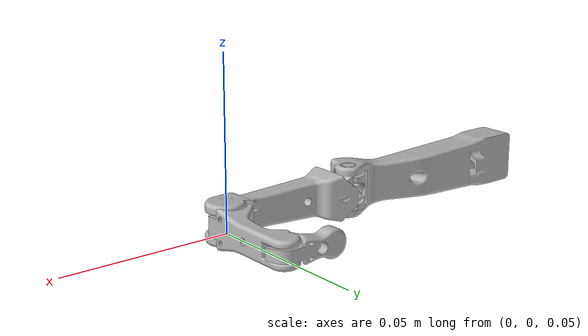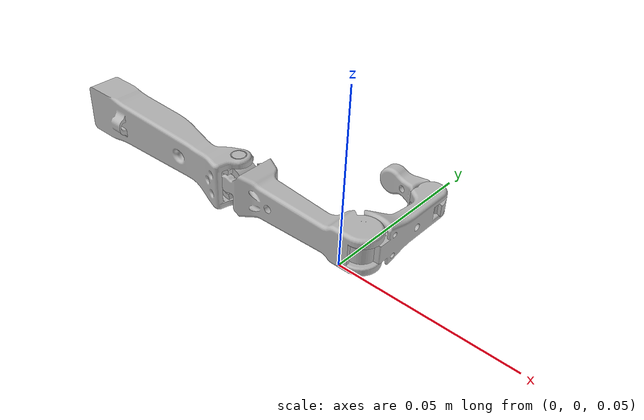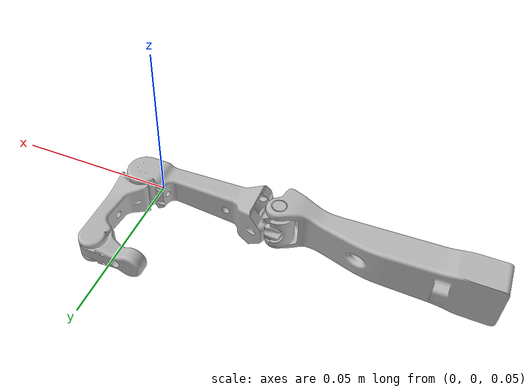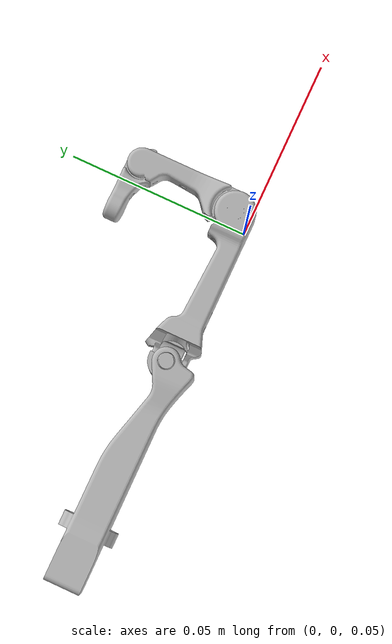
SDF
<?xml version="1.0" ?>
<sdf version="1.6">
	<model name="FingerTest">
		<link name="limb0">
			<pose frame="">-0.007152270675496726 0.010040149934974279 0.02348840378477054 0.0 -0.0 0.0</pose>
			<inertial>
				<pose frame="">0.0 0.0 0.0 0 0 0</pose>
				<mass>0.11612310621212019</mass>
				<inertia>
					<ixx>0.00036167423577589927</ixx>
					<ixy>3.316022305022051e-05</ixy>
					<ixz>-2.282604088458617e-05</ixz>
					<iyy>0.0010667399339109778</iyy>
					<iyz>0.0004897974339456185</iyz>
					<izz>0.0007100993674793531</izz>
				</inertia>
			</inertial>
			<collision name="limb0_collision">
				<geometry>
					<mesh>
						<uri>model://FingerTest/meshes/CAD/limb0.stl</uri>
						<scale>0.001 0.001 0.001</scale>
					</mesh>
				</geometry>
			</collision>
			<visual name="limb0_visual">
				<geometry>
					<mesh>
						<uri>model://FingerTest/meshes/CAD/limb0.stl</uri>
						<scale>0.001 0.001 0.001</scale>
					</mesh>
				</geometry>
			</visual>
		</link>
		<link name="limb1">
			<pose frame="">-0.013665938657484195 0.0013696679651759487 0.02178926714062122 0.0 -0.0 0.0</pose>
			<inertial>
				<pose frame="">0.0 0.0 0.0 0 0 0</pose>
				<mass>0.008412542184097089</mass>
				<inertia>
					<ixx>2.6258496499282942e-05</ixx>
					<ixy>1.3904180735216277e-06</ixy>
					<ixz>-1.9208381827151945e-06</ixz>
					<iyy>3.974805267903569e-05</iyy>
					<iyz>1.8803347565126002e-05</iyz>
					<izz>1.3841078489735179e-05</izz>
				</inertia>
			</inertial>
			<collision name="limb1_collision">
				<geometry>
					<mesh>
						<uri>model://FingerTest/meshes/CAD/limb1.stl</uri>
						<scale>0.001 0.001 0.001</scale>
					</mesh>
				</geometry>
			</collision>
			<visual name="limb1_visual">
				<geometry>
					<mesh>
						<uri>model://FingerTest/meshes/CAD/limb1.stl</uri>
						<scale>0.001 0.001 0.001</scale>
					</mesh>
				</geometry>
			</visual>
		</link>
		<link name="limb2">
			<pose frame="">-0.001190586731255557 -0.054983176772839766 0.03757529876180839 0.0 -0.0 0.0</pose>
			<inertial>
				<pose frame="">0.0 0.0 0.0 0 0 0</pose>
				<mass>0.05290104601406096</mass>
				<inertia>
					<ixx>0.00016481931520552232</ixx>
					<ixy>2.7386134324108545e-06</ixy>
					<ixz>-8.879127837344284e-06</ixz>
					<iyy>0.00018969814269594154</iyy>
					<iyz>5.011825700562624e-05</iyz>
					<izz>2.6738581469810897e-05</izz>
				</inertia>
			</inertial>
			<collision name="limb2_collision">
				<geometry>
					<mesh>
						<uri>model://FingerTest/meshes/CAD/limb2.stl</uri>
						<scale>0.001 0.001 0.001</scale>
					</mesh>
				</geometry>
			</collision>
			<visual name="limb2_visual">
				<geometry>
					<mesh>
						<uri>model://FingerTest/meshes/CAD/limb2.stl</uri>
						<scale>0.001 0.001 0.001</scale>
					</mesh>
				</geometry>
			</visual>
		</link>
		<link name="limb3">
			<pose frame="">0.0043466725792149965 0.005663327008945293 0.01703551043738931 0.0 -0.0 0.0</pose>
			<inertial>
				<pose frame="">0.0 0.0 0.0 0 0 0</pose>
				<mass>0.02402971959338372</mass>
				<inertia>
					<ixx>8.338544608393772e-05</ixx>
					<ixy>-2.192925948413024e-06</ixy>
					<ixz>-2.2686627744271887e-05</ixz>
					<iyy>7.510830016030868e-05</iyy>
					<iyz>-6.66297477480337e-06</iyz>
					<izz>9.808195353956886e-06</izz>
				</inertia>
			</inertial>
			<collision name="limb3_collision">
				<geometry>
					<mesh>
						<uri>model://FingerTest/meshes/CAD/limb3.stl</uri>
						<scale>0.001 0.001 0.001</scale>
					</mesh>
				</geometry>
			</collision>
			<visual name="limb3_visual">
				<geometry>
					<mesh>
						<uri>model://FingerTest/meshes/CAD/limb3.stl</uri>
						<scale>0.001 0.001 0.001</scale>
					</mesh>
				</geometry>
			</visual>
		</link>
		<link name="limb4">
			<pose frame="">0.0019940017488226376 0.014311797180124111 0.018519826661947722 0.0 -0.0 0.0</pose>
			<inertial>
				<pose frame="">0.0 0.0 0.0 0 0 0</pose>
				<mass>0.008066895184750527</mass>
				<inertia>
					<ixx>3.3683914727704094e-05</ixx>
					<ixy>7.064786983553505e-07</ixy>
					<ixz>-1.474015648514199e-05</ixz>
					<iyy>2.523013922854e-05</iyy>
					<iyz>1.1490924430353909e-06</iyz>
					<izz>9.052061455752534e-06</izz>
				</inertia>
			</inertial>
			<collision name="limb4_collision">
				<geometry>
					<mesh>
						<uri>model://FingerTest/meshes/CAD/limb4.stl</uri>
						<scale>0.001 0.001 0.001</scale>
					</mesh>
				</geometry>
			</collision>
			<visual name="limb4_visual">
				<geometry>
					<mesh>
						<uri>model://FingerTest/meshes/CAD/limb4.stl</uri>
						<scale>0.001 0.001 0.001</scale>
					</mesh>
				</geometry>
			</visual>
		</link>
		<joint name="joint0" type="revolute">
			<parent>limb0</parent>
			<child>limb1</child>
			<pose frame="">-0.026170610700226807 0.002739339582173582 0.04117920434407806 0 0 0</pose>
			<axis>
				<xyz>3.3491156006552313e-15 6.504979947930444e-16 0.9999999999999868</xyz>
				<limit>
					<lower>-100000000000000.0</lower>
					<upper>100000000000000.0</upper>
				</limit>
				<use_parent_model_frame>0</use_parent_model_frame>
			</axis>
		</joint>
		<joint name="joint1" type="revolute">
			<parent>limb1</parent>
			<child>limb2</child>
			<pose frame="">-0.03859458698934537 0.06174218447660122 0.017993172709348682 0 0 0</pose>
			<axis>
				<xyz>-2.5515519200013695e-08 -1.0000000000000042 -7.613323592751552e-08</xyz>
				<limit>
					<lower>-100000000000000.0</lower>
					<upper>100000000000000.0</upper>
				</limit>
				<use_parent_model_frame>0</use_parent_model_frame>
			</axis>
		</joint>
		<joint name="joint2" type="revolute">
			<parent>limb2</parent>
			<child>limb3</child>
			<pose frame="">-0.001131846349297494 -0.001404320275159151 0.038532960840909916 0 0 0</pose>
			<axis>
				<xyz>-1.4193482055669556e-09 7.595657156723156e-08 -0.999999999999987</xyz>
				<limit>
					<lower>-100000000000000.0</lower>
					<upper>100000000000000.0</upper>
				</limit>
				<use_parent_model_frame>0</use_parent_model_frame>
			</axis>
		</joint>
		<joint name="joint3" type="revolute">
			<parent>limb3</parent>
			<child>limb4</child>
			<pose frame="">0.0029708251713779334 0.017547212692282214 0.03854864674101537 0 0 0</pose>
			<axis>
				<xyz>-7.84866511022299e-09 8.48927849041977e-08 -0.9999999999999946</xyz>
				<limit>
					<lower>-100000000000000.0</lower>
					<upper>100000000000000.0</upper>
				</limit>
				<use_parent_model_frame>0</use_parent_model_frame>
			</axis>
		</joint>
		<plugin filename="libmyomuscle_plugin.so" name="myomuscle_plugin"/>
	</model>
</sdf>
